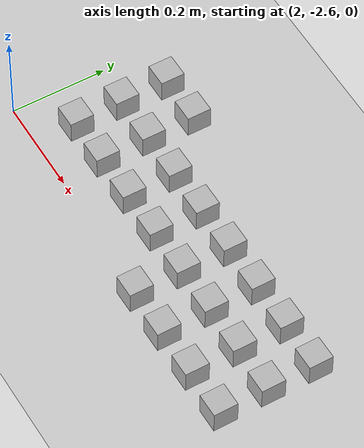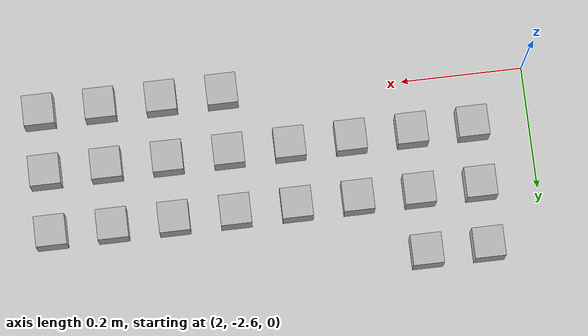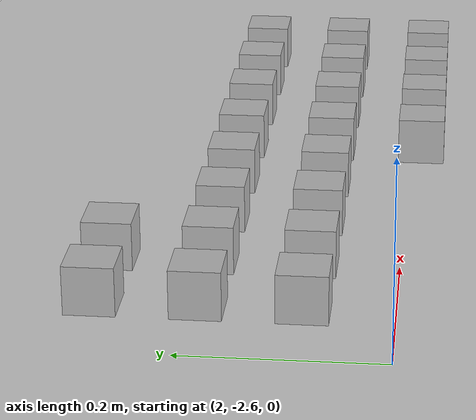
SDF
<sdf version="1.6">
 <world name="default">
  <model name="ground_plane">
   <static>1</static>
   <link name="link">
    <collision name="collision">
     <geometry><plane><normal>0 0 1</normal><size>100 100</size></plane></geometry>
     <surface><friction><ode><mu>100</mu><mu2>50</mu2></ode></friction></surface>
    </collision>
    <visual name="visual">
     <cast_shadows>0</cast_shadows>
     <geometry><plane><normal>0 0 1</normal><size>100 100</size></plane></geometry>
     <material>
      <script><uri>file://media/materials/scripts/gazebo.material</uri><name>Gazebo/Grey</name></script>
     </material>
    </visual>
   </link>
  </model>
  <model name="at4">
   <static>0</static>
   <link name="link">
    <inertial>
     <mass>0.01</mass>
     <inertia><ixx>4e-05</ixx><ixy>0</ixy><ixz>0</ixz><iyy>4e-05</iyy><iyz>0</iyz><izz>4e-05</izz></inertia>
    </inertial>
    <visual name="visual">
     <geometry><box><size>0.05 0.05 0.05</size></box></geometry>
     <material>
      <script>
       <uri>model://at0/materials/scripts</uri>
       <uri>model://at0/materials/textures</uri>
       <name>at0/Diffuse</name>
      </script>
     </material>
    </visual>
    <collision name="collision">
     <geometry><box><size>0.05 0.05 0.05</size></box></geometry>
     <surface><friction><ode><mu>0.8</mu><mu2>0.7</mu2></ode></friction></surface>
    </collision>
   </link>
   <pose>2.49496 -2.61338 0.025 0 -0 0</pose>
  </model>
  <model name="at5">
   <static>0</static>
   <link name="link">
    <inertial>
     <mass>0.01</mass>
     <inertia><ixx>4e-05</ixx><ixy>0</ixy><ixz>0</ixz><iyy>4e-05</iyy><iyz>0</iyz><izz>4e-05</izz></inertia>
    </inertial>
    <visual name="visual">
     <geometry><box><size>0.05 0.05 0.05</size></box></geometry>
     <material>
      <script>
       <uri>model://at0/materials/scripts</uri>
       <uri>model://at0/materials/textures</uri>
       <name>at0/Diffuse</name>
      </script>
     </material>
    </visual>
    <collision name="collision">
     <geometry><box><size>0.05 0.05 0.05</size></box></geometry>
     <surface><friction><ode><mu>0.8</mu><mu2>0.7</mu2></ode></friction></surface>
    </collision>
   </link>
   <pose>2.59496 -2.61338 0.025 0 -0 0</pose>
  </model>
  <model name="at6">
   <static>0</static>
   <link name="link">
    <inertial>
     <mass>0.01</mass>
     <inertia><ixx>4e-05</ixx><ixy>0</ixy><ixz>0</ixz><iyy>4e-05</iyy><iyz>0</iyz><izz>4e-05</izz></inertia>
    </inertial>
    <visual name="visual">
     <geometry><box><size>0.05 0.05 0.05</size></box></geometry>
     <material>
      <script>
       <uri>model://at0/materials/scripts</uri>
       <uri>model://at0/materials/textures</uri>
       <name>at0/Diffuse</name>
      </script>
     </material>
    </visual>
    <collision name="collision">
     <geometry><box><size>0.05 0.05 0.05</size></box></geometry>
     <surface><friction><ode><mu>0.8</mu><mu2>0.7</mu2></ode></friction></surface>
    </collision>
   </link>
   <pose>2.69496 -2.61338 0.025 0 -0 0</pose>
  </model>
  <model name="at7">
   <static>0</static>
   <link name="link">
    <inertial>
     <mass>0.01</mass>
     <inertia><ixx>4e-05</ixx><ixy>0</ixy><ixz>0</ixz><iyy>4e-05</iyy><iyz>0</iyz><izz>4e-05</izz></inertia>
    </inertial>
    <visual name="visual">
     <geometry><box><size>0.05 0.05 0.05</size></box></geometry>
     <material>
      <script>
       <uri>model://at0/materials/scripts</uri>
       <uri>model://at0/materials/textures</uri>
       <name>at0/Diffuse</name>
      </script>
     </material>
    </visual>
    <collision name="collision">
     <geometry><box><size>0.05 0.05 0.05</size></box></geometry>
     <surface><friction><ode><mu>0.8</mu><mu2>0.7</mu2></ode></friction></surface>
    </collision>
   </link>
   <pose>2.79496 -2.61338 0.025 0 -0 0</pose>
  </model>
  <model name="at8">
   <static>0</static>
   <link name="link">
    <inertial>
     <mass>0.01</mass>
     <inertia><ixx>4e-05</ixx><ixy>0</ixy><ixz>0</ixz><iyy>4e-05</iyy><iyz>0</iyz><izz>4e-05</izz></inertia>
    </inertial>
    <visual name="visual">
     <geometry><box><size>0.05 0.05 0.05</size></box></geometry>
     <material>
      <script>
       <uri>model://at0/materials/scripts</uri>
       <uri>model://at0/materials/textures</uri>
       <name>at0/Diffuse</name>
      </script>
     </material>
    </visual>
    <collision name="collision">
     <geometry><box><size>0.05 0.05 0.05</size></box></geometry>
     <surface><friction><ode><mu>0.8</mu><mu2>0.7</mu2></ode></friction></surface>
    </collision>
   </link>
   <pose>2.09496 -2.51338 0.025 0 -0 0</pose>
  </model>
  <model name="at9">
   <static>0</static>
   <link name="link">
    <inertial>
     <mass>0.01</mass>
     <inertia><ixx>4e-05</ixx><ixy>0</ixy><ixz>0</ixz><iyy>4e-05</iyy><iyz>0</iyz><izz>4e-05</izz></inertia>
    </inertial>
    <visual name="visual">
     <geometry><box><size>0.05 0.05 0.05</size></box></geometry>
     <material>
      <script>
       <uri>model://at0/materials/scripts</uri>
       <uri>model://at0/materials/textures</uri>
       <name>at0/Diffuse</name>
      </script>
     </material>
    </visual>
    <collision name="collision">
     <geometry><box><size>0.05 0.05 0.05</size></box></geometry>
     <surface><friction><ode><mu>0.8</mu><mu2>0.7</mu2></ode></friction></surface>
    </collision>
   </link>
   <pose>2.19496 -2.51338 0.025 0 -0 0</pose>
  </model>
  <model name="at10">
   <static>0</static>
   <link name="link">
    <inertial>
     <mass>0.01</mass>
     <inertia><ixx>4e-05</ixx><ixy>0</ixy><ixz>0</ixz><iyy>4e-05</iyy><iyz>0</iyz><izz>4e-05</izz></inertia>
    </inertial>
    <visual name="visual">
     <geometry><box><size>0.05 0.05 0.05</size></box></geometry>
     <material>
      <script>
       <uri>model://at0/materials/scripts</uri>
       <uri>model://at0/materials/textures</uri>
       <name>at0/Diffuse</name>
      </script>
     </material>
    </visual>
    <collision name="collision">
     <geometry><box><size>0.05 0.05 0.05</size></box></geometry>
     <surface><friction><ode><mu>0.8</mu><mu2>0.7</mu2></ode></friction></surface>
    </collision>
   </link>
   <pose>2.29496 -2.51338 0.025 0 -0 0</pose>
  </model>
  <model name="at11">
   <static>0</static>
   <link name="link">
    <inertial>
     <mass>0.01</mass>
     <inertia><ixx>4e-05</ixx><ixy>0</ixy><ixz>0</ixz><iyy>4e-05</iyy><iyz>0</iyz><izz>4e-05</izz></inertia>
    </inertial>
    <visual name="visual">
     <geometry><box><size>0.05 0.05 0.05</size></box></geometry>
     <material>
      <script>
       <uri>model://at0/materials/scripts</uri>
       <uri>model://at0/materials/textures</uri>
       <name>at0/Diffuse</name>
      </script>
     </material>
    </visual>
    <collision name="collision">
     <geometry><box><size>0.05 0.05 0.05</size></box></geometry>
     <surface><friction><ode><mu>0.8</mu><mu2>0.7</mu2></ode></friction></surface>
    </collision>
   </link>
   <pose>2.39496 -2.51338 0.025 0 -0 0</pose>
  </model>
  <model name="at12">
   <static>0</static>
   <link name="link">
    <inertial>
     <mass>0.01</mass>
     <inertia><ixx>4e-05</ixx><ixy>0</ixy><ixz>0</ixz><iyy>4e-05</iyy><iyz>0</iyz><izz>4e-05</izz></inertia>
    </inertial>
    <visual name="visual">
     <geometry><box><size>0.05 0.05 0.05</size></box></geometry>
     <material>
      <script>
       <uri>model://at0/materials/scripts</uri>
       <uri>model://at0/materials/textures</uri>
       <name>at0/Diffuse</name>
      </script>
     </material>
    </visual>
    <collision name="collision">
     <geometry><box><size>0.05 0.05 0.05</size></box></geometry>
     <surface><friction><ode><mu>0.8</mu><mu2>0.7</mu2></ode></friction></surface>
    </collision>
   </link>
   <pose>2.49496 -2.51338 0.025 0 -0 0</pose>
  </model>
  <model name="at13">
   <static>0</static>
   <link name="link">
    <inertial>
     <mass>0.01</mass>
     <inertia><ixx>4e-05</ixx><ixy>0</ixy><ixz>0</ixz><iyy>4e-05</iyy><iyz>0</iyz><izz>4e-05</izz></inertia>
    </inertial>
    <visual name="visual">
     <geometry><box><size>0.05 0.05 0.05</size></box></geometry>
     <material>
      <script>
       <uri>model://at0/materials/scripts</uri>
       <uri>model://at0/materials/textures</uri>
       <name>at0/Diffuse</name>
      </script>
     </material>
    </visual>
    <collision name="collision">
     <geometry><box><size>0.05 0.05 0.05</size></box></geometry>
     <surface><friction><ode><mu>0.8</mu><mu2>0.7</mu2></ode></friction></surface>
    </collision>
   </link>
   <pose>2.59496 -2.51338 0.025 0 -0 0</pose>
  </model>
  <model name="at14">
   <static>0</static>
   <link name="link">
    <inertial>
     <mass>0.01</mass>
     <inertia><ixx>4e-05</ixx><ixy>0</ixy><ixz>0</ixz><iyy>4e-05</iyy><iyz>0</iyz><izz>4e-05</izz></inertia>
    </inertial>
    <visual name="visual">
     <geometry><box><size>0.05 0.05 0.05</size></box></geometry>
     <material>
      <script>
       <uri>model://at0/materials/scripts</uri>
       <uri>model://at0/materials/textures</uri>
       <name>at0/Diffuse</name>
      </script>
     </material>
    </visual>
    <collision name="collision">
     <geometry><box><size>0.05 0.05 0.05</size></box></geometry>
     <surface><friction><ode><mu>0.8</mu><mu2>0.7</mu2></ode></friction></surface>
    </collision>
   </link>
   <pose>2.69496 -2.51338 0.025 0 -0 0</pose>
  </model>
  <model name="at15">
   <static>0</static>
   <link name="link">
    <inertial>
     <mass>0.01</mass>
     <inertia><ixx>4e-05</ixx><ixy>0</ixy><ixz>0</ixz><iyy>4e-05</iyy><iyz>0</iyz><izz>4e-05</izz></inertia>
    </inertial>
    <visual name="visual">
     <geometry><box><size>0.05 0.05 0.05</size></box></geometry>
     <material>
      <script>
       <uri>model://at0/materials/scripts</uri>
       <uri>model://at0/materials/textures</uri>
       <name>at0/Diffuse</name>
      </script>
     </material>
    </visual>
    <collision name="collision">
     <geometry><box><size>0.05 0.05 0.05</size></box></geometry>
     <surface><friction><ode><mu>0.8</mu><mu2>0.7</mu2></ode></friction></surface>
    </collision>
   </link>
   <pose>2.79496 -2.51338 0.025 0 -0 0</pose>
  </model>
  <model name="at16">
   <static>0</static>
   <link name="link">
    <inertial>
     <mass>0.01</mass>
     <inertia><ixx>4e-05</ixx><ixy>0</ixy><ixz>0</ixz><iyy>4e-05</iyy><iyz>0</iyz><izz>4e-05</izz></inertia>
    </inertial>
    <visual name="visual">
     <geometry><box><size>0.05 0.05 0.05</size></box></geometry>
     <material>
      <script>
       <uri>model://at0/materials/scripts</uri>
       <uri>model://at0/materials/textures</uri>
       <name>at0/Diffuse</name>
      </script>
     </material>
    </visual>
    <collision name="collision">
     <geometry><box><size>0.05 0.05 0.05</size></box></geometry>
     <surface><friction><ode><mu>0.8</mu><mu2>0.7</mu2></ode></friction></surface>
    </collision>
   </link>
   <pose>2.09496 -2.41338 0.025 0 -0 0</pose>
  </model>
  <model name="at17">
   <static>0</static>
   <link name="link">
    <inertial>
     <mass>0.01</mass>
     <inertia><ixx>4e-05</ixx><ixy>0</ixy><ixz>0</ixz><iyy>4e-05</iyy><iyz>0</iyz><izz>4e-05</izz></inertia>
    </inertial>
    <visual name="visual">
     <geometry><box><size>0.05 0.05 0.05</size></box></geometry>
     <material>
      <script>
       <uri>model://at0/materials/scripts</uri>
       <uri>model://at0/materials/textures</uri>
       <name>at0/Diffuse</name>
      </script>
     </material>
    </visual>
    <collision name="collision">
     <geometry><box><size>0.05 0.05 0.05</size></box></geometry>
     <surface><friction><ode><mu>0.8</mu><mu2>0.7</mu2></ode></friction></surface>
    </collision>
   </link>
   <pose>2.19496 -2.41338 0.025 0 -0 0</pose>
  </model>
  <model name="at18">
   <static>0</static>
   <link name="link">
    <inertial>
     <mass>0.01</mass>
     <inertia><ixx>4e-05</ixx><ixy>0</ixy><ixz>0</ixz><iyy>4e-05</iyy><iyz>0</iyz><izz>4e-05</izz></inertia>
    </inertial>
    <visual name="visual">
     <geometry><box><size>0.05 0.05 0.05</size></box></geometry>
     <material>
      <script>
       <uri>model://at0/materials/scripts</uri>
       <uri>model://at0/materials/textures</uri>
       <name>at0/Diffuse</name>
      </script>
     </material>
    </visual>
    <collision name="collision">
     <geometry><box><size>0.05 0.05 0.05</size></box></geometry>
     <surface><friction><ode><mu>0.8</mu><mu2>0.7</mu2></ode></friction></surface>
    </collision>
   </link>
   <pose>2.29496 -2.41338 0.025 0 -0 0</pose>
  </model>
  <model name="at19">
   <static>0</static>
   <link name="link">
    <inertial>
     <mass>0.01</mass>
     <inertia><ixx>4e-05</ixx><ixy>0</ixy><ixz>0</ixz><iyy>4e-05</iyy><iyz>0</iyz><izz>4e-05</izz></inertia>
    </inertial>
    <visual name="visual">
     <geometry><box><size>0.05 0.05 0.05</size></box></geometry>
     <material>
      <script>
       <uri>model://at0/materials/scripts</uri>
       <uri>model://at0/materials/textures</uri>
       <name>at0/Diffuse</name>
      </script>
     </material>
    </visual>
    <collision name="collision">
     <geometry><box><size>0.05 0.05 0.05</size></box></geometry>
     <surface><friction><ode><mu>0.8</mu><mu2>0.7</mu2></ode></friction></surface>
    </collision>
   </link>
   <pose>2.39496 -2.41338 0.025 0 -0 0</pose>
  </model>
  <model name="at20">
   <static>0</static>
   <link name="link">
    <inertial>
     <mass>0.01</mass>
     <inertia><ixx>4e-05</ixx><ixy>0</ixy><ixz>0</ixz><iyy>4e-05</iyy><iyz>0</iyz><izz>4e-05</izz></inertia>
    </inertial>
    <visual name="visual">
     <geometry><box><size>0.05 0.05 0.05</size></box></geometry>
     <material>
      <script>
       <uri>model://at0/materials/scripts</uri>
       <uri>model://at0/materials/textures</uri>
       <name>at0/Diffuse</name>
      </script>
     </material>
    </visual>
    <collision name="collision">
     <geometry><box><size>0.05 0.05 0.05</size></box></geometry>
     <surface><friction><ode><mu>0.8</mu><mu2>0.7</mu2></ode></friction></surface>
    </collision>
   </link>
   <pose>2.49496 -2.41338 0.025 0 -0 0</pose>
  </model>
  <model name="at21">
   <static>0</static>
   <link name="link">
    <inertial>
     <mass>0.01</mass>
     <inertia><ixx>4e-05</ixx><ixy>0</ixy><ixz>0</ixz><iyy>4e-05</iyy><iyz>0</iyz><izz>4e-05</izz></inertia>
    </inertial>
    <visual name="visual">
     <geometry><box><size>0.05 0.05 0.05</size></box></geometry>
     <material>
      <script>
       <uri>model://at0/materials/scripts</uri>
       <uri>model://at0/materials/textures</uri>
       <name>at0/Diffuse</name>
      </script>
     </material>
    </visual>
    <collision name="collision">
     <geometry><box><size>0.05 0.05 0.05</size></box></geometry>
     <surface><friction><ode><mu>0.8</mu><mu2>0.7</mu2></ode></friction></surface>
    </collision>
   </link>
   <pose>2.59496 -2.41338 0.025 0 -0 0</pose>
  </model>
  <model name="at22">
   <static>0</static>
   <link name="link">
    <inertial>
     <mass>0.01</mass>
     <inertia><ixx>4e-05</ixx><ixy>0</ixy><ixz>0</ixz><iyy>4e-05</iyy><iyz>0</iyz><izz>4e-05</izz></inertia>
    </inertial>
    <visual name="visual">
     <geometry><box><size>0.05 0.05 0.05</size></box></geometry>
     <material>
      <script>
       <uri>model://at0/materials/scripts</uri>
       <uri>model://at0/materials/textures</uri>
       <name>at0/Diffuse</name>
      </script>
     </material>
    </visual>
    <collision name="collision">
     <geometry><box><size>0.05 0.05 0.05</size></box></geometry>
     <surface><friction><ode><mu>0.8</mu><mu2>0.7</mu2></ode></friction></surface>
    </collision>
   </link>
   <pose>2.69496 -2.41338 0.025 0 -0 0</pose>
  </model>
  <model name="at23">
   <static>0</static>
   <link name="link">
    <inertial>
     <mass>0.01</mass>
     <inertia><ixx>4e-05</ixx><ixy>0</ixy><ixz>0</ixz><iyy>4e-05</iyy><iyz>0</iyz><izz>4e-05</izz></inertia>
    </inertial>
    <visual name="visual">
     <geometry><box><size>0.05 0.05 0.05</size></box></geometry>
     <material>
      <script>
       <uri>model://at0/materials/scripts</uri>
       <uri>model://at0/materials/textures</uri>
       <name>at0/Diffuse</name>
      </script>
     </material>
    </visual>
    <collision name="collision">
     <geometry><box><size>0.05 0.05 0.05</size></box></geometry>
     <surface><friction><ode><mu>0.8</mu><mu2>0.7</mu2></ode></friction></surface>
    </collision>
   </link>
   <pose>2.79496 -2.41338 0.025 0 -0 0</pose>
  </model>
  <model name="at24">
   <static>0</static>
   <link name="link">
    <inertial>
     <mass>0.01</mass>
     <inertia><ixx>4e-05</ixx><ixy>0</ixy><ixz>0</ixz><iyy>4e-05</iyy><iyz>0</iyz><izz>4e-05</izz></inertia>
    </inertial>
    <visual name="visual">
     <geometry><box><size>0.05 0.05 0.05</size></box></geometry>
     <material>
      <script>
       <uri>model://at0/materials/scripts</uri>
       <uri>model://at0/materials/textures</uri>
       <name>at0/Diffuse</name>
      </script>
     </material>
    </visual>
    <collision name="collision">
     <geometry><box><size>0.05 0.05 0.05</size></box></geometry>
     <surface><friction><ode><mu>0.8</mu><mu2>0.7</mu2></ode></friction></surface>
    </collision>
   </link>
   <pose>2.09496 -2.31338 0.025 0 -0 0</pose>
  </model>
  <model name="at25">
   <static>0</static>
   <link name="link">
    <inertial>
     <mass>0.01</mass>
     <inertia><ixx>4e-05</ixx><ixy>0</ixy><ixz>0</ixz><iyy>4e-05</iyy><iyz>0</iyz><izz>4e-05</izz></inertia>
    </inertial>
    <visual name="visual">
     <geometry><box><size>0.05 0.05 0.05</size></box></geometry>
     <material>
      <script>
       <uri>model://at0/materials/scripts</uri>
       <uri>model://at0/materials/textures</uri>
       <name>at0/Diffuse</name>
      </script>
     </material>
    </visual>
    <collision name="collision">
     <geometry><box><size>0.05 0.05 0.05</size></box></geometry>
     <surface><friction><ode><mu>0.8</mu><mu2>0.7</mu2></ode></friction></surface>
    </collision>
   </link>
   <pose>2.19496 -2.31338 0.025 0 -0 0</pose>
  </model>
 </world>
</sdf>
